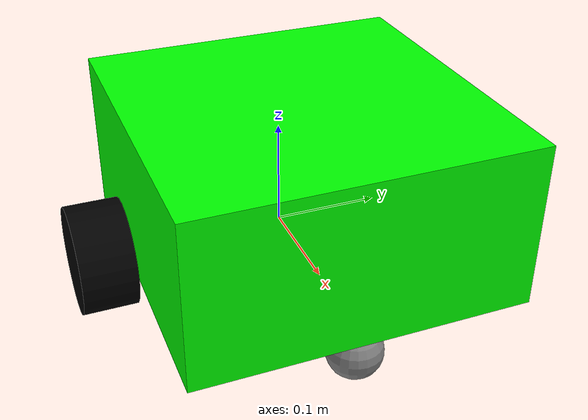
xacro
<?xml version="1.0"?>
<robot xmlns:xacro="http://www.ros.org/wiki/xacro">

    <xacro:include filename="inertial_macros.xacro" />

    <!-- Colors  -->

    <material name="black">
        <color rgba="0 0 0 1"/>
    </material>

    <material name="white">
        <color rgba="1 1 1 1"/>
    </material>

    <material name="red">
        <color rgba="1 0 0 1"/>
    </material>

    <material name="green">
        <color rgba="0 1 0 1"/>
    </material>

    <material name="grey">
        <color rgba="0.5 0.5 0.5 1"/>
    </material>

    <!-- Base Link  -->

    <link name="base_link">

    </link>

    <!-- Chassis Joint  -->

    <joint name="chassis_joint" type="fixed">
        <origin xyz="-0.1 0 0" rpy="0 0 0"/>
        <parent link="base_link"/>
        <child link="chassis"/>
    </joint>

    <!-- Chassis Link  -->

    <link name="chassis">
        <visual>
            <origin xyz="0.15 0 0.075" rpy="0 0 0"/>
            <geometry>
                <box size="0.3 0.3 0.15"/>
            </geometry>
            <material name="green"/>
        </visual>
        <collision>
            <origin xyz="0 0 0" rpy="0 0 0"/>
            <geometry>
                <box size="0.3 0.3 0.15"/>
            </geometry>
        </collision>
        <inertial_box mass="0.5" x="0.3" y="0.3" z="0.15">
            <origin xyz="0.15 0 0.075" rpy="0 0 0"/>
        </inertial_box>
    </link>

    <!-- Left Wheel Joint  -->

    <joint name="left_wheel_joint" type="continuous">
        <origin xyz="0 0.175 0" rpy="-${pi/2} 0 0"/>
        <parent link="base_link"/>
        <child link="left_wheel"/>
        <axis xyz="0 0 1"/>
    </joint>

    <!-- Left Wheel Link  -->

    <link name="left_wheel">
        <visual>
            <origin xyz="0 0 0" rpy="0 0 0"/>
            <geometry>
                <cylinder radius="0.05" length="0.05"/>
            </geometry>
            <material name="black"/>
        </visual>
        <collision>
            <origin xyz="0 0 0" rpy="0 0 0"/>
            <geometry>
                <cylinder radius="0.05" length="0.05"/>
            </geometry>
        </collision>
        <inertial_cylinder mass="0.1" length="0.05" radius="0.05">
            <origin xyz="0 0 0" rpy="0 0 0"/>
        </inertial_cylinder>
    </link>

    <!-- Right Wheel Joint  -->

    <joint name="right_wheel_joint" type="continuous">
        <origin xyz="0 -0.175 0" rpy="${pi/2} 0 0"/>
        <parent link="base_link"/>
        <child link="right_wheel"/>
        <axis xyz="0 0 -1"/>
    </joint>

    <!-- Right Wheel Link  -->

    <link name="right_wheel">
        <visual>
            <origin xyz="0 0 0" rpy="0 0 0"/>
            <geometry>
                <cylinder radius="0.05" length="0.05"/>
            </geometry>
            <material name="black"/>
        </visual>
        <collision>
            <origin xyz="0 0 0" rpy="0 0 0"/>
            <geometry>
                <cylinder radius="0.05" length="0.05"/>
            </geometry>
        </collision>
        <inertial_cylinder mass="0.1" length="0.05" radius="0.05">
            <origin xyz="0 0 0" rpy="0 0 0"/>
        </inertial_cylinder>
    </link>

    <!-- Castor Link  -->

    <link name="castor">
        <visual>
            <origin xyz="0 0 0" rpy="0 0 0"/>
            <geometry>
                <sphere radius="0.025"/>
            </geometry>
            <material name="grey"/>
        </visual>
        <collision>
            <origin xyz="0 0 0" rpy="0 0 0"/>
            <geometry>
                <sphere radius="0.025"/>
            </geometry>
        </collision>
        <inertial_sphere mass="0.1" radius="0.025">
            <origin xyz="0 0 0" rpy="0 0 0"/>
        </inertial_sphere>
    </link>

    <!-- Castor Joint  -->

    <joint name="castor_joint" type="fixed">
        <origin xyz="0.175 0 -0.025" rpy="0 0 0"/>
        <parent link="base_link"/>
        <child link="castor"/>
    </joint>

</robot>
